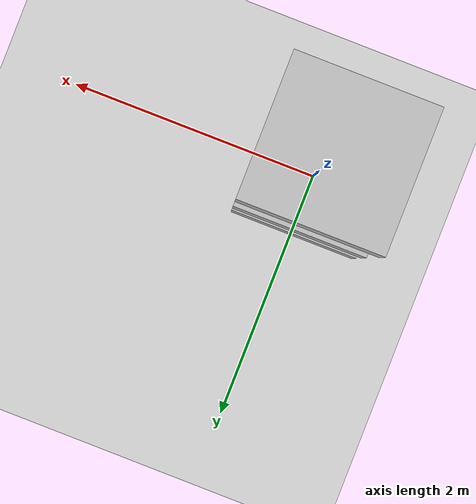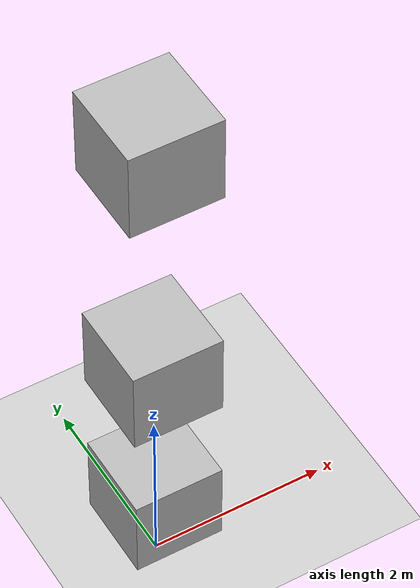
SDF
<?xml version="1.0" ?>
<sdf version="1.5">
  <world name="default">
    <include>
      <uri>model://ground_plane</uri>
    </include>
    <include>
      <uri>model://sun</uri>
    </include>

    <model name="boxA">
      <pose>0 0 1.0 0 0 0</pose>
      <link name="link">
        <collision name="collision">
          <geometry>
            <box>
              <size>1 1 1</size>
            </box>
          </geometry>
          <surface>
            <contact>
              <collide_bitmask>0x01</collide_bitmask>
            </contact>
          </surface>
        </collision>
        <visual name="visual">
          <geometry>
            <box>
              <size>1 1 1</size>
            </box>
          </geometry>
        </visual>
      </link>
    </model>

    <model name="boxB">
      <pose>0 0 3.0 0 0 0</pose>
      <link name="link">
        <collision name="collision">
          <geometry>
            <box>
              <size>1 1 1</size>
            </box>
          </geometry>
          <surface>
            <contact>
              <collide_bitmask>0x02</collide_bitmask>
            </contact>
          </surface>
        </collision>
        <visual name="visual">
          <geometry>
            <box>
              <size>1 1 1</size>
            </box>
          </geometry>
        </visual>
      </link>
    </model>

    <model name="boxC">
      <pose>0 0 6.0 0 0 0</pose>
      <link name="link">
        <collision name="collision">
          <geometry>
            <box>
              <size>1 1 1</size>
            </box>
          </geometry>
          <surface>
            <contact>
              <collide_bitmask>0x03</collide_bitmask>
            </contact>
          </surface>
        </collision>
        <visual name="visual">
          <geometry>
            <box>
              <size>1 1 1</size>
            </box>
          </geometry>
        </visual>
      </link>
    </model>

  </world>
</sdf>
